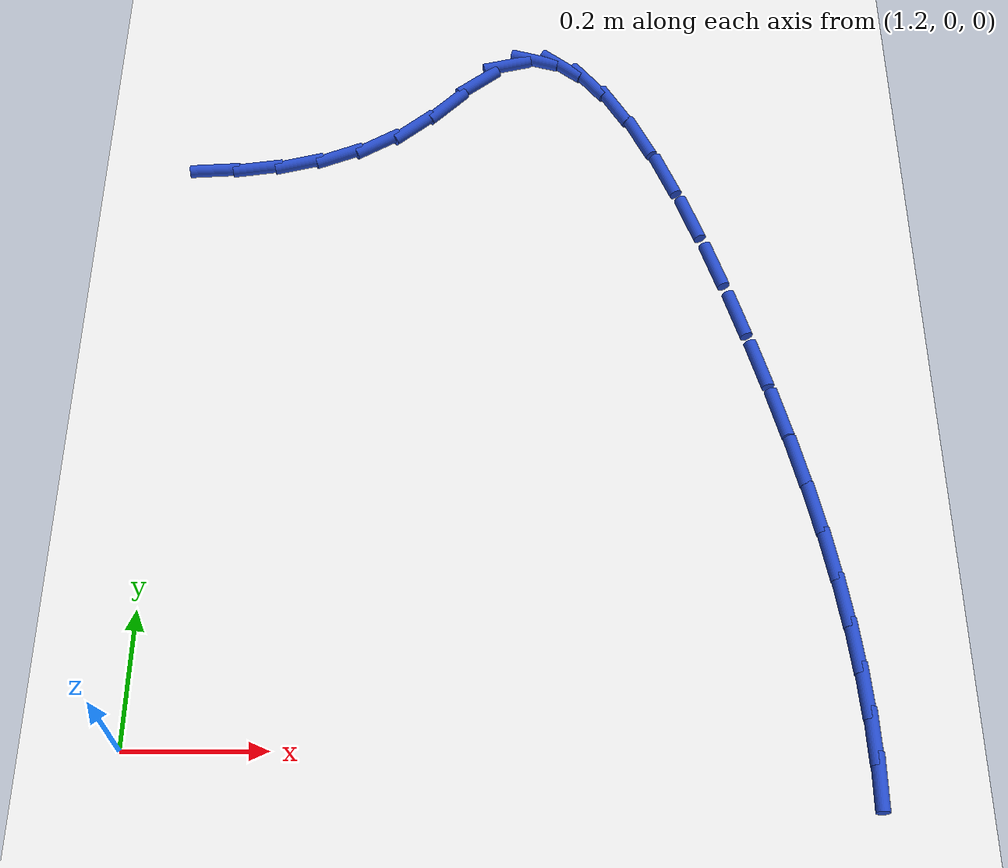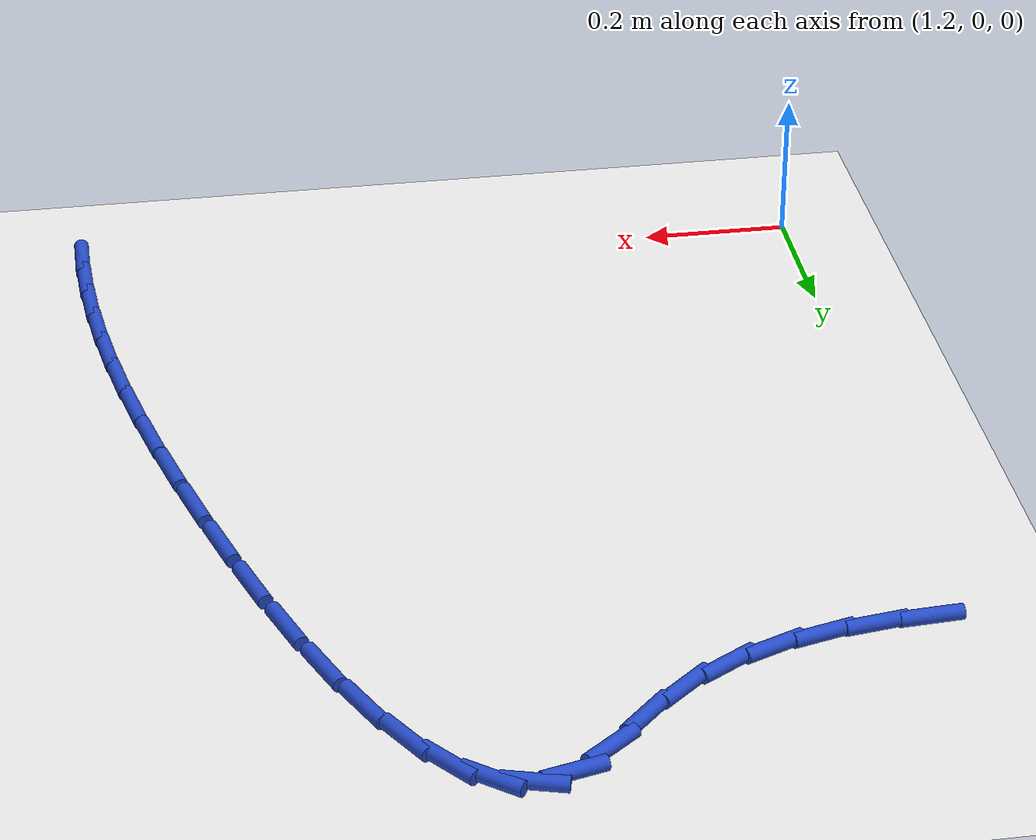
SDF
<sdf version="1.6">
 <world name="default">
  <model name="ground_plane">
   <static>1</static>
   <link name="link">
    <collision name="collision">
     <geometry><plane><normal>0 0 1</normal><size>100 100</size></plane></geometry>
     <surface><friction><ode><mu>100</mu><mu2>50</mu2></ode></friction></surface>
    </collision>
    <visual name="visual">
     <cast_shadows>0</cast_shadows>
     <geometry><plane><normal>0 0 1</normal><size>100 100</size></plane></geometry>
     <material>
      <script><uri>file://media/materials/scripts/gazebo.material</uri><name>Gazebo/WhiteGlow</name></script>
     </material>
    </visual>
   </link>
  </model>
  <model name="line">
   <link name="link_26">
    <pose>1.2426618945554468 0.9535783765902479 0.01 0 1.57 0.0630105347778469</pose>
    <collision name="collision">
     <geometry><cylinder><radius>0.01</radius><length>0.08</length></cylinder></geometry>
    </collision>
    <visual name="visual">
     <material>
      <script><name>Gazebo/Blue</name><uri>file://media/materials/scripts/gazebo.material</uri></script>
     </material>
     <geometry><cylinder><radius>0.01</radius><length>0.08</length></cylinder></geometry>
    </visual>
   </link>
   <link name="link_27">
    <pose>1.3110087154145407 0.9578906548864666 0.01 0 1.57 0.1441208479834185</pose>
    <collision name="collision">
     <geometry><cylinder><radius>0.01</radius><length>0.08</length></cylinder></geometry>
    </collision>
    <visual name="visual">
     <material>
      <script><name>Gazebo/Blue</name><uri>file://media/materials/scripts/gazebo.material</uri></script>
     </material>
     <geometry><cylinder><radius>0.01</radius><length>0.08</length></cylinder></geometry>
    </visual>
   </link>
   <link name="link_28">
    <pose>1.3773765772936484 0.9675224265393749 0.01 0 1.57 0.25040535458346624</pose>
    <collision name="collision">
     <geometry><cylinder><radius>0.01</radius><length>0.08</length></cylinder></geometry>
    </collision>
    <visual name="visual">
     <material>
      <script><name>Gazebo/Blue</name><uri>file://media/materials/scripts/gazebo.material</uri></script>
     </material>
     <geometry><cylinder><radius>0.01</radius><length>0.08</length></cylinder></geometry>
    </visual>
   </link>
   <link name="link_29">
    <pose>1.4413145940674394 0.983876092821298 0.01 0 1.57 0.3812833586703849</pose>
    <collision name="collision">
     <geometry><cylinder><radius>0.01</radius><length>0.08</length></cylinder></geometry>
    </collision>
    <visual name="visual">
     <material>
      <script><name>Gazebo/Blue</name><uri>file://media/materials/scripts/gazebo.material</uri></script>
     </material>
     <geometry><cylinder><radius>0.01</radius><length>0.08</length></cylinder></geometry>
    </visual>
   </link>
   <link name="link_30">
    <pose>1.502371879610581 1.0083540550045595 0.01 0 1.57 0.5323465416809064</pose>
    <collision name="collision">
     <geometry><cylinder><radius>0.01</radius><length>0.08</length></cylinder></geometry>
    </collision>
    <visual name="visual">
     <material>
      <script><name>Gazebo/Blue</name><uri>file://media/materials/scripts/gazebo.material</uri></script>
     </material>
     <geometry><cylinder><radius>0.01</radius><length>0.08</length></cylinder></geometry>
    </visual>
   </link>
   <link name="link_31">
    <pose>1.56009754779774 1.0423587143614839 0.01 0 1.57 0.6936006534521182</pose>
    <collision name="collision">
     <geometry><cylinder><radius>0.01</radius><length>0.08</length></cylinder></geometry>
    </collision>
    <visual name="visual">
     <material>
      <script><name>Gazebo/Blue</name><uri>file://media/materials/scripts/gazebo.material</uri></script>
     </material>
     <geometry><cylinder><radius>0.01</radius><length>0.08</length></cylinder></geometry>
    </visual>
   </link>
   <link name="link_32">
    <pose>1.6140478124481175 1.0872133700800464 0.01 0 1.57 0.7819397723946852</pose>
    <collision name="collision">
     <geometry><cylinder><radius>0.01</radius><length>0.08</length></cylinder></geometry>
    </collision>
    <visual name="visual">
     <material>
      <script><name>Gazebo/Blue</name><uri>file://media/materials/scripts/gazebo.material</uri></script>
     </material>
     <geometry><cylinder><radius>0.01</radius><length>0.08</length></cylinder></geometry>
    </visual>
   </link>
   <link name="link_33">
    <pose>1.6644084787535858 1.137226901778264 0.01 0 1.57 0.657177895789095</pose>
    <collision name="collision">
     <geometry><cylinder><radius>0.01</radius><length>0.08</length></cylinder></geometry>
    </collision>
    <visual name="visual">
     <material>
      <script><name>Gazebo/Blue</name><uri>file://media/materials/scripts/gazebo.material</uri></script>
     </material>
     <geometry><cylinder><radius>0.01</radius><length>0.08</length></cylinder></geometry>
    </visual>
   </link>
   <link name="link_34">
    <pose>1.712478210127809 1.1743171611882859 0.01 0 1.57 0.23947429398900683</pose>
    <collision name="collision">
     <geometry><cylinder><radius>0.01</radius><length>0.08</length></cylinder></geometry>
    </collision>
    <visual name="visual">
     <material>
      <script><name>Gazebo/Blue</name><uri>file://media/materials/scripts/gazebo.material</uri></script>
     </material>
     <geometry><cylinder><radius>0.01</radius><length>0.08</length></cylinder></geometry>
    </visual>
   </link>
   <link name="link_35">
    <pose>1.7592012856942767 1.1857250479638148 0.01 0 1.57 -0.27584987224920887</pose>
    <collision name="collision">
     <geometry><cylinder><radius>0.01</radius><length>0.08</length></cylinder></geometry>
    </collision>
    <visual name="visual">
     <material>
      <script><name>Gazebo/Blue</name><uri>file://media/materials/scripts/gazebo.material</uri></script>
     </material>
     <geometry><cylinder><radius>0.01</radius><length>0.08</length></cylinder></geometry>
    </visual>
   </link>
   <link name="link_36">
    <pose>1.8045125113139906 1.172898964058756 0.01 0 1.57 -0.6578252696529099</pose>
    <collision name="collision">
     <geometry><cylinder><radius>0.01</radius><length>0.08</length></cylinder></geometry>
    </collision>
    <visual name="visual">
     <material>
      <script><name>Gazebo/Blue</name><uri>file://media/materials/scripts/gazebo.material</uri></script>
     </material>
     <geometry><cylinder><radius>0.01</radius><length>0.08</length></cylinder></geometry>
    </visual>
   </link>
   <link name="link_37">
    <pose>1.848215563833867 1.1391328439819337 0.01 0 1.57 -0.8870038336027727</pose>
    <collision name="collision">
     <geometry><cylinder><radius>0.01</radius><length>0.08</length></cylinder></geometry>
    </collision>
    <visual name="visual">
     <material>
      <script><name>Gazebo/Blue</name><uri>file://media/materials/scripts/gazebo.material</uri></script>
     </material>
     <geometry><cylinder><radius>0.01</radius><length>0.08</length></cylinder></geometry>
    </visual>
   </link>
   <link name="link_38">
    <pose>1.890114120100822 1.0877206222421725 0.01 0 1.57 -1.0254817854929144</pose>
    <collision name="collision">
     <geometry><cylinder><radius>0.01</radius><length>0.08</length></cylinder></geometry>
    </collision>
    <visual name="visual">
     <material>
      <script><name>Gazebo/Blue</name><uri>file://media/materials/scripts/gazebo.material</uri></script>
     </material>
     <geometry><cylinder><radius>0.01</radius><length>0.08</length></cylinder></geometry>
    </visual>
   </link>
   <link name="link_39">
    <pose>1.9300118569617721 1.021956233348297 0.01 0 1.57 -1.1145771876729764</pose>
    <collision name="collision">
     <geometry><cylinder><radius>0.01</radius><length>0.08</length></cylinder></geometry>
    </collision>
    <visual name="visual">
     <material>
      <script><name>Gazebo/Blue</name><uri>file://media/materials/scripts/gazebo.material</uri></script>
     </material>
     <geometry><cylinder><radius>0.01</radius><length>0.08</length></cylinder></geometry>
    </visual>
   </link>
   <link name="link_40">
    <pose>1.9677124512636341 0.9451336118091324 0.01 0 1.57 -1.1753749972634926</pose>
    <collision name="collision">
     <geometry><cylinder><radius>0.01</radius><length>0.08</length></cylinder></geometry>
    </collision>
    <visual name="visual">
     <material>
      <script><name>Gazebo/Blue</name><uri>file://media/materials/scripts/gazebo.material</uri></script>
     </material>
     <geometry><cylinder><radius>0.01</radius><length>0.08</length></cylinder></geometry>
    </visual>
   </link>
   <link name="link_41">
    <pose>2.003019579853324 0.860546692133503 0.01 0 1.57 -1.2187280767305517</pose>
    <collision name="collision">
     <geometry><cylinder><radius>0.01</radius><length>0.08</length></cylinder></geometry>
    </collision>
    <visual name="visual">
     <material>
      <script><name>Gazebo/Blue</name><uri>file://media/materials/scripts/gazebo.material</uri></script>
     </material>
     <geometry><cylinder><radius>0.01</radius><length>0.08</length></cylinder></geometry>
    </visual>
   </link>
   <link name="link_42">
    <pose>2.035736919577759 0.7714894088302331 0.01 0 1.57 -1.250509450434409</pose>
    <collision name="collision">
     <geometry><cylinder><radius>0.01</radius><length>0.08</length></cylinder></geometry>
    </collision>
    <visual name="visual">
     <material>
      <script><name>Gazebo/Blue</name><uri>file://media/materials/scripts/gazebo.material</uri></script>
     </material>
     <geometry><cylinder><radius>0.01</radius><length>0.08</length></cylinder></geometry>
    </visual>
   </link>
   <link name="link_43">
    <pose>2.065668147283854 0.6812556964081473 0.01 0 1.57 -1.274004463814775</pose>
    <collision name="collision">
     <geometry><cylinder><radius>0.01</radius><length>0.08</length></cylinder></geometry>
    </collision>
    <visual name="visual">
     <material>
      <script><name>Gazebo/Blue</name><uri>file://media/materials/scripts/gazebo.material</uri></script>
     </material>
     <geometry><cylinder><radius>0.01</radius><length>0.08</length></cylinder></geometry>
    </visual>
   </link>
   <link name="link_44">
    <pose>2.0926171649180225 0.5931365018460224 0.01 0 1.57 -1.2932515010190053</pose>
    <collision name="collision">
     <geometry><cylinder><radius>0.01</radius><length>0.08</length></cylinder></geometry>
    </collision>
    <visual name="visual">
     <material>
      <script><name>Gazebo/Blue</name><uri>file://media/materials/scripts/gazebo.material</uri></script>
     </material>
     <geometry><cylinder><radius>0.01</radius><length>0.08</length></cylinder></geometry>
    </visual>
   </link>
   <link name="link_45">
    <pose>2.1164618475893753 0.5094409971738332 0.01 0 1.57 -1.3144691185690114</pose>
    <collision name="collision">
     <geometry><cylinder><radius>0.01</radius><length>0.08</length></cylinder></geometry>
    </collision>
    <visual name="visual">
     <material>
      <script><name>Gazebo/Blue</name><uri>file://media/materials/scripts/gazebo.material</uri></script>
     </material>
     <geometry><cylinder><radius>0.01</radius><length>0.08</length></cylinder></geometry>
    </visual>
   </link>
   <link name="link_46">
    <pose>2.1372603723756636 0.4300853790562188 0.01 0 1.57 -1.3386654979697388</pose>
    <collision name="collision">
     <geometry><cylinder><radius>0.01</radius><length>0.08</length></cylinder></geometry>
    </collision>
    <visual name="visual">
     <material>
      <script><name>Gazebo/Blue</name><uri>file://media/materials/scripts/gazebo.material</uri></script>
     </material>
     <geometry><cylinder><radius>0.01</radius><length>0.08</length></cylinder></geometry>
    </visual>
   </link>
   <link name="link_47">
    <pose>2.1550978670413787 0.3546281535017925 0.01 0 1.57 -1.3659131471145538</pose>
    <collision name="collision">
     <geometry><cylinder><radius>0.01</radius><length>0.08</length></cylinder></geometry>
    </collision>
    <visual name="visual">
     <material>
      <script><name>Gazebo/Blue</name><uri>file://media/materials/scripts/gazebo.material</uri></script>
     </material>
     <geometry><cylinder><radius>0.01</radius><length>0.08</length></cylinder></geometry>
    </visual>
   </link>
   <link name="link_48">
    <pose>2.1700594593510116 0.28262782651916785 0.01 0 1.57 -1.3961661916624897</pose>
    <collision name="collision">
     <geometry><cylinder><radius>0.01</radius><length>0.08</length></cylinder></geometry>
    </collision>
    <visual name="visual">
     <material>
      <script><name>Gazebo/Blue</name><uri>file://media/materials/scripts/gazebo.material</uri></script>
     </material>
     <geometry><cylinder><radius>0.01</radius><length>0.08</length></cylinder></geometry>
    </visual>
   </link>
   <link name="link_49">
    <pose>2.1822302770690545 0.21364290411695827 0.01 0 1.57 -1.4292256516560131</pose>
    <collision name="collision">
     <geometry><cylinder><radius>0.01</radius><length>0.08</length></cylinder></geometry>
    </collision>
    <visual name="visual">
     <material>
      <script><name>Gazebo/Blue</name><uri>file://media/materials/scripts/gazebo.material</uri></script>
     </material>
     <geometry><cylinder><radius>0.01</radius><length>0.08</length></cylinder></geometry>
    </visual>
   </link>
   <link name="link_50">
    <pose>2.1916954479599973 0.14723189230377723 0.01 0 1.57 -1.4647119268686888</pose>
    <collision name="collision">
     <geometry><cylinder><radius>0.01</radius><length>0.08</length></cylinder></geometry>
    </collision>
    <visual name="visual">
     <material>
      <script><name>Gazebo/Blue</name><uri>file://media/materials/scripts/gazebo.material</uri></script>
     </material>
     <geometry><cylinder><radius>0.01</radius><length>0.08</length></cylinder></geometry>
    </visual>
   </link>
   <link name="link_51">
    <pose>2.198540099788333 0.08295329708823812 0.01 0 1.57 -1.5020532301903584</pose>
    <collision name="collision">
     <geometry><cylinder><radius>0.01</radius><length>0.08</length></cylinder></geometry>
    </collision>
    <visual name="visual">
     <material>
      <script><name>Gazebo/Blue</name><uri>file://media/materials/scripts/gazebo.material</uri></script>
     </material>
     <geometry><cylinder><radius>0.01</radius><length>0.08</length></cylinder></geometry>
    </visual>
   </link>
   <link name="link_52">
    <pose>2.202849360318552 0.02036562447895441 0.01 0 1.57 -1.5404982940216334</pose>
    <collision name="collision">
     <geometry><cylinder><radius>0.01</radius><length>0.08</length></cylinder></geometry>
    </collision>
    <visual name="visual">
     <material>
      <script><name>Gazebo/Blue</name><uri>file://media/materials/scripts/gazebo.material</uri></script>
     </material>
     <geometry><cylinder><radius>0.01</radius><length>0.08</length></cylinder></geometry>
    </visual>
   </link>
   <link name="link_53">
    <pose>2.2047083573151443 -0.040972619515460496 0.01 0 1.57 1.5624347806190162</pose>
    <collision name="collision">
     <geometry><cylinder><radius>0.01</radius><length>0.08</length></cylinder></geometry>
    </collision>
    <visual name="visual">
     <material>
      <script><name>Gazebo/Blue</name><uri>file://media/materials/scripts/gazebo.material</uri></script>
     </material>
     <geometry><cylinder><radius>0.01</radius><length>0.08</length></cylinder></geometry>
    </visual>
   </link>
  </model>
 </world>
</sdf>
